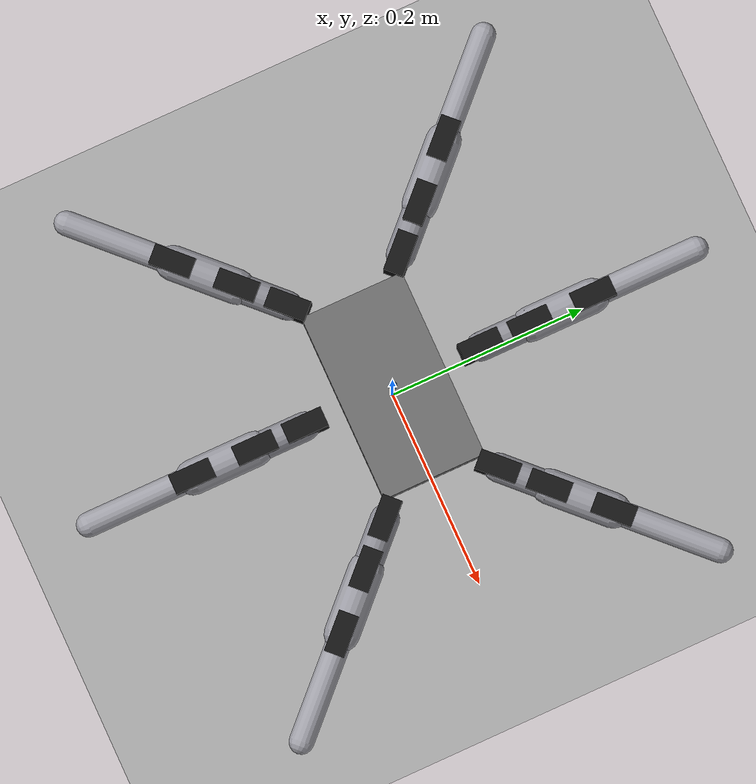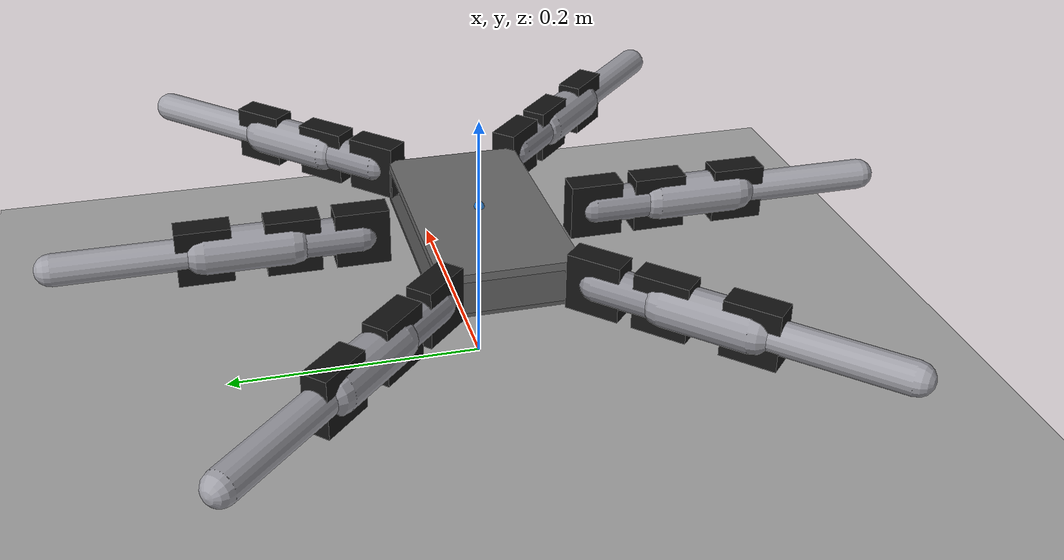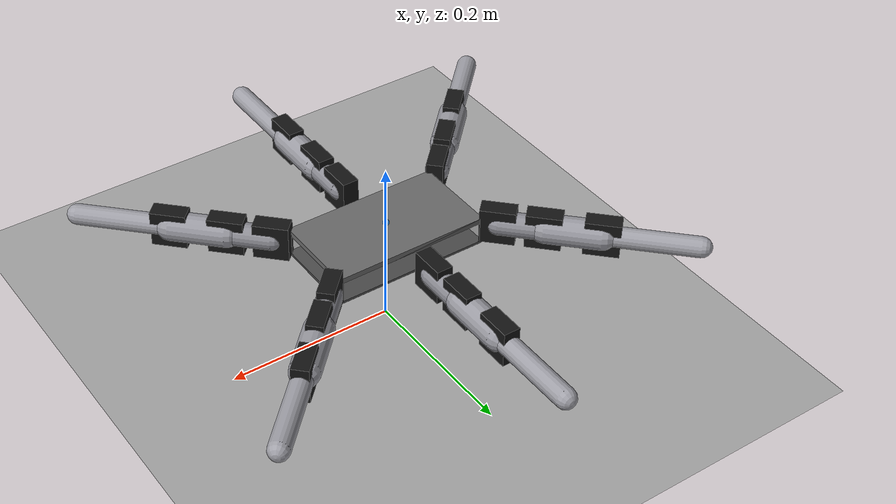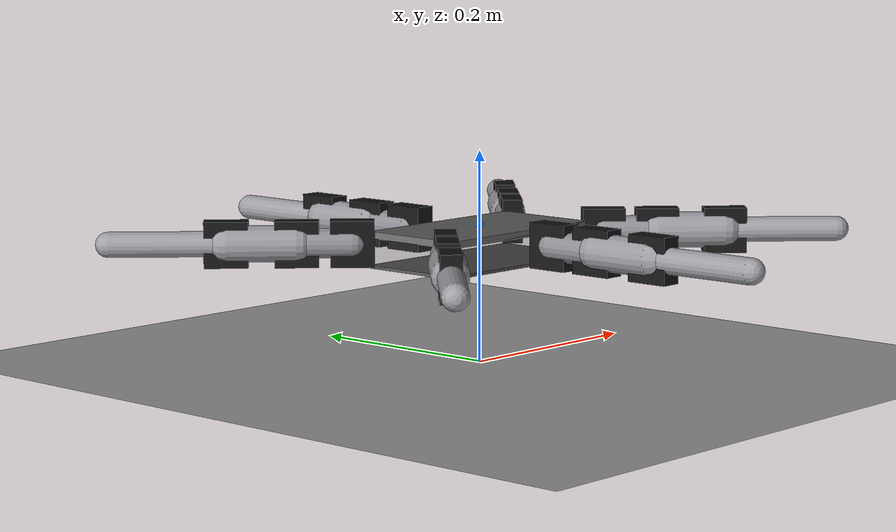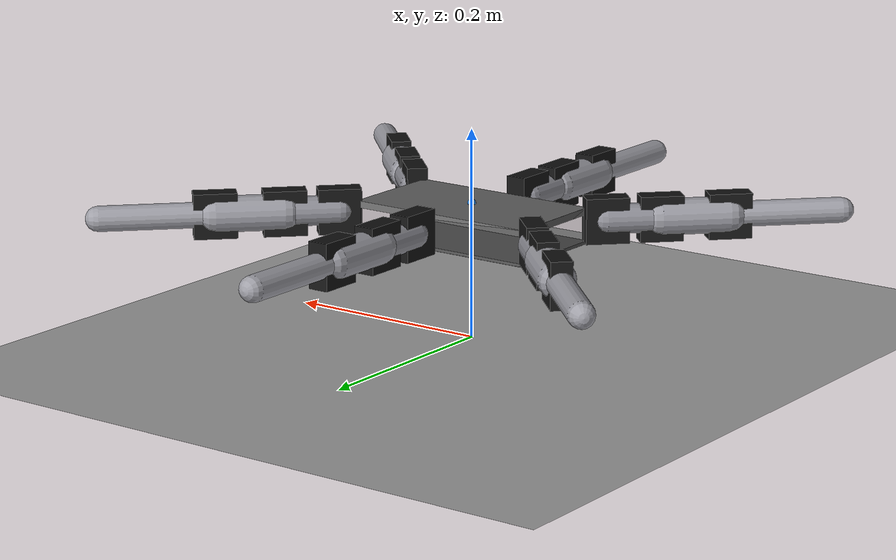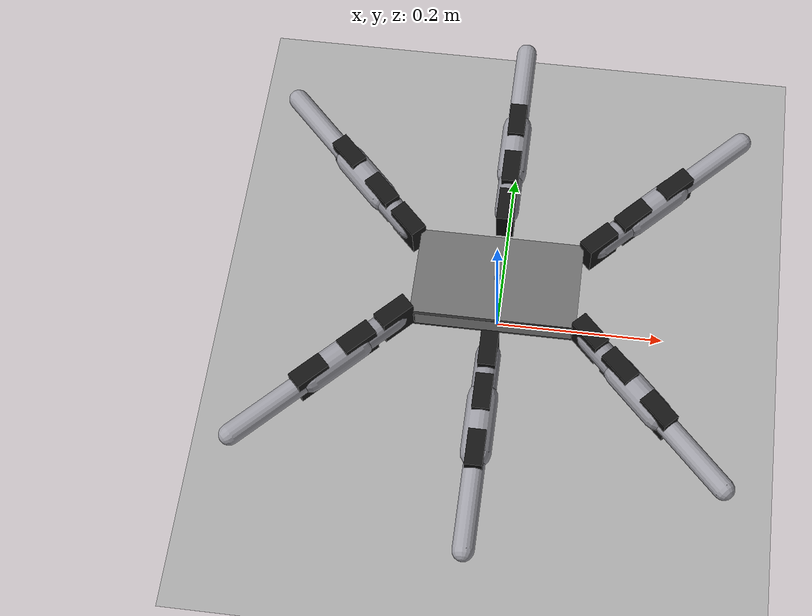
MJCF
<mujoco model="hexapod_physics">
  <compiler angle="degree" autolimits="true" inertiafromgeom="true"/>
  <option timestep="0.002" gravity="0 0 -9.81" integrator="implicitfast" solver="Newton" cone="elliptic"/>
  <statistic center="0 0 0.07" extent="0.45"/>
  <visual><headlight ambient="0.25 0.25 0.25" diffuse="0.8 0.8 0.8" specular="0.2 0.2 0.2"/></visual>
  <custom>
    <numeric name="coxa_length_mm" data="51.077"/>
    <numeric name="femur_length_mm" data="64.648"/>
    <numeric name="tibia_length_mm" data="114.615"/>
    <numeric name="leg_plane_z_mm" data="9.175"/>
    <numeric name="servo_stall_torque_nm_6v" data="1.0787315"/>
    <numeric name="servo_speed_rad_s_6v" data="7.4799825"/>
    <numeric name="servo_running_current_a" data="0.5 0.9"/>
    <numeric name="servo_stall_current_a" data="2.5"/>
    <numeric name="sbec_limit_a" data="20"/>
    <numeric name="firmware_control_period_s" data="0.02"/>
    <numeric name="archive_known_mass_kg" data="1.574300639"/>
    <numeric name="payload_estimate_kg" data="0.55"/>
    <numeric name="reference_cycle_time_s" data="1.22"/>
    <numeric name="residual_limit_deg" data="10"/>
  </custom>
  <worldbody>
    <light name="light" pos="0 0 1.5" dir="0 0 -1" diffuse="1 1 1"/>
    <geom name="floor" type="plane" pos="0 0 0" size="2 2 0.1" friction="0.9 0.01 0.0001" condim="4" rgba="0.65 0.65 0.65 1"/>
    <body name="body" pos="0 0 0.110">
      <freejoint name="body_free"/>
      <site name="imu_site" pos="0 0 0.020" size="0.004" rgba="0.2 0.6 1 0.8"/>
      <geom name="body_collision" type="box" pos="0 0 0.00175" size="0.094 0.052 0.01725" mass="0" friction="0.5 0.005 0.0001" rgba="0.25 0.25 0.25 0.20"/>
      <geom name="bottom_plate_mass" type="box" pos="0 0 -0.014" size="0.094 0.052 0.0015" mass="0.016784567" contype="0" conaffinity="0" rgba="0.35 0.35 0.35 1"/>
      <geom name="top_plate_mass" type="box" pos="0 0 0.01575" size="0.094 0.052 0.00325" mass="0.028612755" contype="0" conaffinity="0" rgba="0.42 0.42 0.42 1"/>
      <geom name="body_print_misc_mass" type="box" pos="0 0 0" size="0.060 0.035 0.012" mass="0.036231321" contype="0" conaffinity="0" rgba="0.2 0.5 0.2 0.15"/>
      <geom name="payload_estimate" type="box" pos="0 0 0.006" size="0.070 0.040 0.012" mass="0.55" contype="0" conaffinity="0" rgba="0.1 0.7 0.2 0.12"/>
      <geom name="mass_servo_q1_front_left" type="box" pos="0.1104 0.0584 0.009175" euler="0 0 45" size="0.02035 0.00985 0.02145" mass="0.066922757" contype="0" conaffinity="0" rgba="0.08 0.08 0.08 1"/>
      <geom name="mass_servo_q1_middle_left" type="box" pos="0 0.0908 0.009175" euler="0 0 90" size="0.02035 0.00985 0.02145" mass="0.066922757" contype="0" conaffinity="0" rgba="0.08 0.08 0.08 1"/>
      <geom name="mass_servo_q1_back_left" type="box" pos="-0.1104 0.0584 0.009175" euler="0 0 135" size="0.02035 0.00985 0.02145" mass="0.066922757" contype="0" conaffinity="0" rgba="0.08 0.08 0.08 1"/>
      <geom name="mass_servo_q1_front_right" type="box" pos="0.1104 -0.0584 0.009175" euler="0 0 -45" size="0.02035 0.00985 0.02145" mass="0.066922757" contype="0" conaffinity="0" rgba="0.08 0.08 0.08 1"/>
      <geom name="mass_servo_q1_middle_right" type="box" pos="0 -0.0908 0.009175" euler="0 0 -90" size="0.02035 0.00985 0.02145" mass="0.066922757" contype="0" conaffinity="0" rgba="0.08 0.08 0.08 1"/>
      <geom name="mass_servo_q1_back_right" type="box" pos="-0.1104 -0.0584 0.009175" euler="0 0 -135" size="0.02035 0.00985 0.02145" mass="0.066922757" contype="0" conaffinity="0" rgba="0.08 0.08 0.08 1"/>
      <body name="coxa_front_left" pos="0.1104 0.0584 0.009175" euler="0 0 45">
        <joint name="q1_front_left" type="hinge" axis="0 0 1" range="-45 45"/>
        <geom name="coxa_collision_FL" type="capsule" fromto="0 0 0 0.051077 0 0" size="0.014" mass="0" friction="0.45 0.003 0.0001" rgba="0.55 0.55 0.58 1"/>
        <geom name="mass_servo_q2_front_left" type="box" pos="0.051077 0 0" size="0.02035 0.00985 0.02145" mass="0.066922757" contype="0" conaffinity="0" rgba="0.08 0.08 0.08 1"/>
        <body name="femur_front_left" pos="0.051077 0 0">
          <joint name="q2_front_left" type="hinge" axis="0 -1 0" range="-45 125"/>
          <geom name="femur_collision_FL" type="capsule" fromto="0 0 0 0.064648 0 0" size="0.017" mass="0.017519738" friction="0.45 0.003 0.0001" rgba="0.60 0.60 0.63 1"/>
          <geom name="mass_servo_q3_front_left" type="box" pos="0.064648 0 0" size="0.02035 0.00985 0.02145" mass="0.066922757" contype="0" conaffinity="0" rgba="0.08 0.08 0.08 1"/>
          <body name="tibia_front_left" pos="0.064648 0 0">
            <joint name="q3_front_left" type="hinge" axis="0 -1 0" range="-178 -5"/>
            <geom name="tibia_collision_FL" type="capsule" fromto="0 0 0 0.107615 0 0" size="0.012" mass="0.023931751" friction="0.45 0.003 0.0001" rgba="0.62 0.62 0.65 1"/>
            <geom name="foot_collision_FL" type="sphere" pos="0.107615 0 0" size="0.007" mass="0.006558906" friction="1.0 0.015 0.0002" condim="4" rgba="0.12 0.12 0.12 1"/>
            <site name="foot_front_left" pos="0.114615 0 0" size="0.004" rgba="0 0.8 0 1"/>
          </body>
        </body>
      </body>
      <body name="coxa_middle_left" pos="0 0.0908 0.009175" euler="0 0 90">
        <joint name="q1_middle_left" type="hinge" axis="0 0 1" range="-45 45"/>
        <geom name="coxa_collision_ML" type="capsule" fromto="0 0 0 0.051077 0 0" size="0.014" mass="0" friction="0.45 0.003 0.0001" rgba="0.55 0.55 0.58 1"/>
        <geom name="mass_servo_q2_middle_left" type="box" pos="0.051077 0 0" size="0.02035 0.00985 0.02145" mass="0.066922757" contype="0" conaffinity="0" rgba="0.08 0.08 0.08 1"/>
        <body name="femur_middle_left" pos="0.051077 0 0">
          <joint name="q2_middle_left" type="hinge" axis="0 -1 0" range="-45 125"/>
          <geom name="femur_collision_ML" type="capsule" fromto="0 0 0 0.064648 0 0" size="0.017" mass="0.017519738" friction="0.45 0.003 0.0001" rgba="0.60 0.60 0.63 1"/>
          <geom name="mass_servo_q3_middle_left" type="box" pos="0.064648 0 0" size="0.02035 0.00985 0.02145" mass="0.066922757" contype="0" conaffinity="0" rgba="0.08 0.08 0.08 1"/>
          <body name="tibia_middle_left" pos="0.064648 0 0">
            <joint name="q3_middle_left" type="hinge" axis="0 -1 0" range="-178 -5"/>
            <geom name="tibia_collision_ML" type="capsule" fromto="0 0 0 0.107615 0 0" size="0.012" mass="0.023931751" friction="0.45 0.003 0.0001" rgba="0.62 0.62 0.65 1"/>
            <geom name="foot_collision_ML" type="sphere" pos="0.107615 0 0" size="0.007" mass="0.006558906" friction="1.0 0.015 0.0002" condim="4" rgba="0.12 0.12 0.12 1"/>
            <site name="foot_middle_left" pos="0.114615 0 0" size="0.004" rgba="0 0.8 0 1"/>
          </body>
        </body>
      </body>
      <body name="coxa_back_left" pos="-0.1104 0.0584 0.009175" euler="0 0 135">
        <joint name="q1_back_left" type="hinge" axis="0 0 1" range="-45 45"/>
        <geom name="coxa_collision_BL" type="capsule" fromto="0 0 0 0.051077 0 0" size="0.014" mass="0" friction="0.45 0.003 0.0001" rgba="0.55 0.55 0.58 1"/>
        <geom name="mass_servo_q2_back_left" type="box" pos="0.051077 0 0" size="0.02035 0.00985 0.02145" mass="0.066922757" contype="0" conaffinity="0" rgba="0.08 0.08 0.08 1"/>
        <body name="femur_back_left" pos="0.051077 0 0">
          <joint name="q2_back_left" type="hinge" axis="0 -1 0" range="-45 125"/>
          <geom name="femur_collision_BL" type="capsule" fromto="0 0 0 0.064648 0 0" size="0.017" mass="0.017519738" friction="0.45 0.003 0.0001" rgba="0.60 0.60 0.63 1"/>
          <geom name="mass_servo_q3_back_left" type="box" pos="0.064648 0 0" size="0.02035 0.00985 0.02145" mass="0.066922757" contype="0" conaffinity="0" rgba="0.08 0.08 0.08 1"/>
          <body name="tibia_back_left" pos="0.064648 0 0">
            <joint name="q3_back_left" type="hinge" axis="0 -1 0" range="-178 -5"/>
            <geom name="tibia_collision_BL" type="capsule" fromto="0 0 0 0.107615 0 0" size="0.012" mass="0.023931751" friction="0.45 0.003 0.0001" rgba="0.62 0.62 0.65 1"/>
            <geom name="foot_collision_BL" type="sphere" pos="0.107615 0 0" size="0.007" mass="0.006558906" friction="1.0 0.015 0.0002" condim="4" rgba="0.12 0.12 0.12 1"/>
            <site name="foot_back_left" pos="0.114615 0 0" size="0.004" rgba="0 0.8 0 1"/>
          </body>
        </body>
      </body>
      <body name="coxa_front_right" pos="0.1104 -0.0584 0.009175" euler="0 0 -45">
        <joint name="q1_front_right" type="hinge" axis="0 0 -1" range="-45 45"/>
        <geom name="coxa_collision_FR" type="capsule" fromto="0 0 0 0.051077 0 0" size="0.014" mass="0" friction="0.45 0.003 0.0001" rgba="0.55 0.55 0.58 1"/>
        <geom name="mass_servo_q2_front_right" type="box" pos="0.051077 0 0" size="0.02035 0.00985 0.02145" mass="0.066922757" contype="0" conaffinity="0" rgba="0.08 0.08 0.08 1"/>
        <body name="femur_front_right" pos="0.051077 0 0">
          <joint name="q2_front_right" type="hinge" axis="0 -1 0" range="-45 125"/>
          <geom name="femur_collision_FR" type="capsule" fromto="0 0 0 0.064648 0 0" size="0.017" mass="0.017519738" friction="0.45 0.003 0.0001" rgba="0.60 0.60 0.63 1"/>
          <geom name="mass_servo_q3_front_right" type="box" pos="0.064648 0 0" size="0.02035 0.00985 0.02145" mass="0.066922757" contype="0" conaffinity="0" rgba="0.08 0.08 0.08 1"/>
          <body name="tibia_front_right" pos="0.064648 0 0">
            <joint name="q3_front_right" type="hinge" axis="0 -1 0" range="-178 -5"/>
            <geom name="tibia_collision_FR" type="capsule" fromto="0 0 0 0.107615 0 0" size="0.012" mass="0.023931751" friction="0.45 0.003 0.0001" rgba="0.62 0.62 0.65 1"/>
            <geom name="foot_collision_FR" type="sphere" pos="0.107615 0 0" size="0.007" mass="0.006558906" friction="1.0 0.015 0.0002" condim="4" rgba="0.12 0.12 0.12 1"/>
            <site name="foot_front_right" pos="0.114615 0 0" size="0.004" rgba="0 0.8 0 1"/>
          </body>
        </body>
      </body>
      <body name="coxa_middle_right" pos="0 -0.0908 0.009175" euler="0 0 -90">
        <joint name="q1_middle_right" type="hinge" axis="0 0 -1" range="-45 45"/>
        <geom name="coxa_collision_MR" type="capsule" fromto="0 0 0 0.051077 0 0" size="0.014" mass="0" friction="0.45 0.003 0.0001" rgba="0.55 0.55 0.58 1"/>
        <geom name="mass_servo_q2_middle_right" type="box" pos="0.051077 0 0" size="0.02035 0.00985 0.02145" mass="0.066922757" contype="0" conaffinity="0" rgba="0.08 0.08 0.08 1"/>
        <body name="femur_middle_right" pos="0.051077 0 0">
          <joint name="q2_middle_right" type="hinge" axis="0 -1 0" range="-45 125"/>
          <geom name="femur_collision_MR" type="capsule" fromto="0 0 0 0.064648 0 0" size="0.017" mass="0.017519738" friction="0.45 0.003 0.0001" rgba="0.60 0.60 0.63 1"/>
          <geom name="mass_servo_q3_middle_right" type="box" pos="0.064648 0 0" size="0.02035 0.00985 0.02145" mass="0.066922757" contype="0" conaffinity="0" rgba="0.08 0.08 0.08 1"/>
          <body name="tibia_middle_right" pos="0.064648 0 0">
            <joint name="q3_middle_right" type="hinge" axis="0 -1 0" range="-178 -5"/>
            <geom name="tibia_collision_MR" type="capsule" fromto="0 0 0 0.107615 0 0" size="0.012" mass="0.023931751" friction="0.45 0.003 0.0001" rgba="0.62 0.62 0.65 1"/>
            <geom name="foot_collision_MR" type="sphere" pos="0.107615 0 0" size="0.007" mass="0.006558906" friction="1.0 0.015 0.0002" condim="4" rgba="0.12 0.12 0.12 1"/>
            <site name="foot_middle_right" pos="0.114615 0 0" size="0.004" rgba="0 0.8 0 1"/>
          </body>
        </body>
      </body>
      <body name="coxa_back_right" pos="-0.1104 -0.0584 0.009175" euler="0 0 -135">
        <joint name="q1_back_right" type="hinge" axis="0 0 -1" range="-45 45"/>
        <geom name="coxa_collision_BR" type="capsule" fromto="0 0 0 0.051077 0 0" size="0.014" mass="0" friction="0.45 0.003 0.0001" rgba="0.55 0.55 0.58 1"/>
        <geom name="mass_servo_q2_back_right" type="box" pos="0.051077 0 0" size="0.02035 0.00985 0.02145" mass="0.066922757" contype="0" conaffinity="0" rgba="0.08 0.08 0.08 1"/>
        <body name="femur_back_right" pos="0.051077 0 0">
          <joint name="q2_back_right" type="hinge" axis="0 -1 0" range="-45 125"/>
          <geom name="femur_collision_BR" type="capsule" fromto="0 0 0 0.064648 0 0" size="0.017" mass="0.017519738" friction="0.45 0.003 0.0001" rgba="0.60 0.60 0.63 1"/>
          <geom name="mass_servo_q3_back_right" type="box" pos="0.064648 0 0" size="0.02035 0.00985 0.02145" mass="0.066922757" contype="0" conaffinity="0" rgba="0.08 0.08 0.08 1"/>
          <body name="tibia_back_right" pos="0.064648 0 0">
            <joint name="q3_back_right" type="hinge" axis="0 -1 0" range="-178 -5"/>
            <geom name="tibia_collision_BR" type="capsule" fromto="0 0 0 0.107615 0 0" size="0.012" mass="0.023931751" friction="0.45 0.003 0.0001" rgba="0.62 0.62 0.65 1"/>
            <geom name="foot_collision_BR" type="sphere" pos="0.107615 0 0" size="0.007" mass="0.006558906" friction="1.0 0.015 0.0002" condim="4" rgba="0.12 0.12 0.12 1"/>
            <site name="foot_back_right" pos="0.114615 0 0" size="0.004" rgba="0 0.8 0 1"/>
          </body>
        </body>
      </body>
    </body>
  </worldbody>
  <actuator>
    <position name="act_q1_front_left" joint="q1_front_left" kp="20" kv="0.5" inheritrange="1" ctrllimited="true" forcelimited="true" forcerange="-1.0787315 1.0787315"/>
    <position name="act_q2_front_left" joint="q2_front_left" kp="20" kv="0.5" inheritrange="1" ctrllimited="true" forcelimited="true" forcerange="-1.0787315 1.0787315"/>
    <position name="act_q3_front_left" joint="q3_front_left" kp="20" kv="0.5" inheritrange="1" ctrllimited="true" forcelimited="true" forcerange="-1.0787315 1.0787315"/>
    <position name="act_q1_middle_left" joint="q1_middle_left" kp="20" kv="0.5" inheritrange="1" ctrllimited="true" forcelimited="true" forcerange="-1.0787315 1.0787315"/>
    <position name="act_q2_middle_left" joint="q2_middle_left" kp="20" kv="0.5" inheritrange="1" ctrllimited="true" forcelimited="true" forcerange="-1.0787315 1.0787315"/>
    <position name="act_q3_middle_left" joint="q3_middle_left" kp="20" kv="0.5" inheritrange="1" ctrllimited="true" forcelimited="true" forcerange="-1.0787315 1.0787315"/>
    <position name="act_q1_back_left" joint="q1_back_left" kp="20" kv="0.5" inheritrange="1" ctrllimited="true" forcelimited="true" forcerange="-1.0787315 1.0787315"/>
    <position name="act_q2_back_left" joint="q2_back_left" kp="20" kv="0.5" inheritrange="1" ctrllimited="true" forcelimited="true" forcerange="-1.0787315 1.0787315"/>
    <position name="act_q3_back_left" joint="q3_back_left" kp="20" kv="0.5" inheritrange="1" ctrllimited="true" forcelimited="true" forcerange="-1.0787315 1.0787315"/>
    <position name="act_q1_front_right" joint="q1_front_right" kp="20" kv="0.5" inheritrange="1" ctrllimited="true" forcelimited="true" forcerange="-1.0787315 1.0787315"/>
    <position name="act_q2_front_right" joint="q2_front_right" kp="20" kv="0.5" inheritrange="1" ctrllimited="true" forcelimited="true" forcerange="-1.0787315 1.0787315"/>
    <position name="act_q3_front_right" joint="q3_front_right" kp="20" kv="0.5" inheritrange="1" ctrllimited="true" forcelimited="true" forcerange="-1.0787315 1.0787315"/>
    <position name="act_q1_middle_right" joint="q1_middle_right" kp="20" kv="0.5" inheritrange="1" ctrllimited="true" forcelimited="true" forcerange="-1.0787315 1.0787315"/>
    <position name="act_q2_middle_right" joint="q2_middle_right" kp="20" kv="0.5" inheritrange="1" ctrllimited="true" forcelimited="true" forcerange="-1.0787315 1.0787315"/>
    <position name="act_q3_middle_right" joint="q3_middle_right" kp="20" kv="0.5" inheritrange="1" ctrllimited="true" forcelimited="true" forcerange="-1.0787315 1.0787315"/>
    <position name="act_q1_back_right" joint="q1_back_right" kp="20" kv="0.5" inheritrange="1" ctrllimited="true" forcelimited="true" forcerange="-1.0787315 1.0787315"/>
    <position name="act_q2_back_right" joint="q2_back_right" kp="20" kv="0.5" inheritrange="1" ctrllimited="true" forcelimited="true" forcerange="-1.0787315 1.0787315"/>
    <position name="act_q3_back_right" joint="q3_back_right" kp="20" kv="0.5" inheritrange="1" ctrllimited="true" forcelimited="true" forcerange="-1.0787315 1.0787315"/>
  </actuator>
</mujoco>
